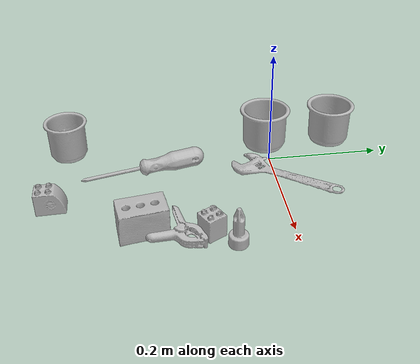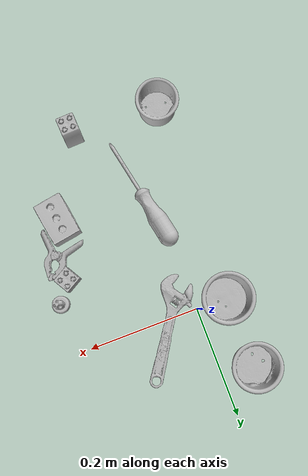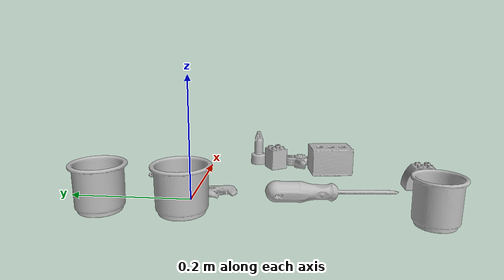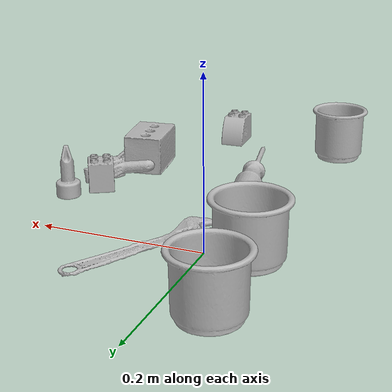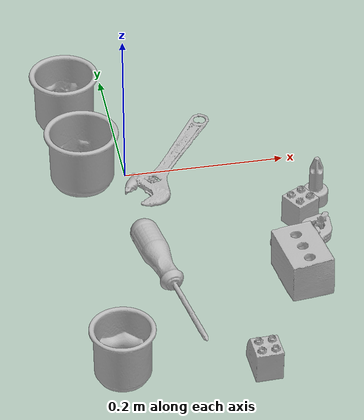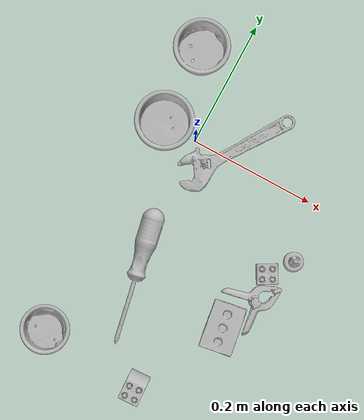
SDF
<sdf version="1.4">
  <world name="default">
    <light name="light1" type="point">
      <pose>0 0 1 0 0 0</pose>
      <diffuse>3 3 3 1</diffuse>
      <specular>3 3 3 1</specular>
    </light>
    <light name="light2" type="point">
      <pose>0 0.5 2 0 0 0</pose>
      <diffuse>1 1 1 1</diffuse>
      <specular>1 1 1 1</specular>
    </light>
    <light name="light3" type="point">
      <pose>0 0.5 2 0 0 0</pose>
      <diffuse>3 3 3 1</diffuse>
      <specular>3 3 3 1</specular>
    </light>
    <scene>
      <ambient>0.7 0.7 0.7</ambient>
    </scene>
    <model name="cup1">
      <link name="link_cup1">
        <collision name="default">
          <geometry>
            <mesh>
              <uri>model://h_cups/collision_meshes/collision.obj</uri>
              <scale>1.0 1.0 1.0</scale>
            </mesh>
          </geometry>
          <surface>
            <friction>
              <ode>
                <mu>0.5</mu>
                <mu2>0.5</mu2>
              </ode>
            </friction>
          <contact>
        <ode>
            <max_vel>0</max_vel>
            <min_depth>0.0001</min_depth>
            <kp>1e8</kp>
        </ode>
    </contact></surface>
        </collision>
        <visual name="default">
          <geometry>
            <mesh>
              <uri>model://h_cups/visual_meshes/visual.dae</uri>
              <scale>1.0 1.0 1.0</scale>
            </mesh>
          </geometry>
        </visual>
        <inertial>
          <mass>0.09017354249954224</mass>
          <pose>-2.702734127524309e-05 0.00023018653155304492 -0.0018405391601845622 -0.024362361674121313 0.06545247408237653 0.12884890922354367</pose>
          <inertia>
            <ixx>0.00011645493</ixx>
            <iyy>0.000115065246</iyy>
            <izz>0.00012212929</izz>
            <ixy>0</ixy>
            <ixz>0</ixz>
            <iyz>0</iyz>
          </inertia>
        </inertial>
      </link>
      <pose>-0.052835214883089066 0.0010603866539895535 0.037758007645606995 -7.298720000541691e-08 -1.9981439537146693e-07 -2.5616257988638096</pose>
    </model>
    <model name="cup2">
      <link name="link_cup2">
        <collision name="default">
          <geometry>
            <mesh>
              <uri>model://g_cups/collision_meshes/collision.obj</uri>
              <scale>1.0 1.0 1.0</scale>
            </mesh>
          </geometry>
          <surface>
            <friction>
              <ode>
                <mu>0.5</mu>
                <mu2>0.5</mu2>
              </ode>
            </friction>
          <contact>
        <ode>
            <max_vel>0</max_vel>
            <min_depth>0.0001</min_depth>
            <kp>1e8</kp>
        </ode>
    </contact></surface>
        </collision>
        <visual name="default">
          <geometry>
            <mesh>
              <uri>model://g_cups/visual_meshes/visual.dae</uri>
              <scale>1.0 1.0 1.0</scale>
            </mesh>
          </geometry>
        </visual>
        <inertial>
          <mass>0.07892031967639923</mass>
          <pose>-0.0007946275873109698 -4.206384619465098e-05 -0.0021329368464648724 -0.21381953376637775 -0.31410844314425407 0.31119468358147234</pose>
          <inertia>
            <ixx>9.211769e-05</ixx>
            <iyy>9.180432e-05</iyy>
            <izz>9.541806e-05</izz>
            <ixy>0</ixy>
            <ixz>0</ixz>
            <iyz>0</iyz>
          </inertia>
        </inertial>
      </link>
      <pose>-0.05628889054059982 0.1261877566576004 0.03720299154520035 -1.5706592567091525e-08 1.6264737900893634e-07 -1.0382475977358239</pose>
    </model>
    <model name="cup3">
      <link name="link_cup3">
        <collision name="default">
          <geometry>
            <mesh>
              <uri>model://e_cups/collision_meshes/collision.obj</uri>
              <scale>1.0 1.0 1.0</scale>
            </mesh>
          </geometry>
          <surface>
            <friction>
              <ode>
                <mu>0.5</mu>
                <mu2>0.5</mu2>
              </ode>
            </friction>
          <contact>
        <ode>
            <max_vel>0</max_vel>
            <min_depth>0.0001</min_depth>
            <kp>1e8</kp>
        </ode>
    </contact></surface>
        </collision>
        <visual name="default">
          <geometry>
            <mesh>
              <uri>model://e_cups/visual_meshes/visual.dae</uri>
              <scale>1.0 1.0 1.0</scale>
            </mesh>
          </geometry>
        </visual>
        <inertial>
          <mass>0.08743876963853836</mass>
          <pose>0.0011355745373293757 0.0028797851409763098 -0.0038829741533845663 0.6952398618358687 0.08767880823198544 -0.5235243888876825</pose>
          <inertia>
            <ixx>7.709911e-05</ixx>
            <iyy>8.05796e-05</iyy>
            <izz>7.3715666e-05</izz>
            <ixy>0</ixy>
            <ixz>0</ixz>
            <iyz>0</iyz>
          </inertia>
        </inertial>
      </link>
      <pose>-0.06185796111822128 -0.3599129617214203 0.035599734634160995 0.0001587307884806865 -0.0002008251523251883 0.22848550027580639</pose>
    </model>
    <model name="toy1">
      <link name="link_toy1">
        <collision name="default">
          <geometry>
            <mesh>
              <uri>model://d_lego_duplo/collision_meshes/collision.obj</uri>
              <scale>1.0 1.0 1.0</scale>
            </mesh>
          </geometry>
          <surface>
            <friction>
              <ode>
                <mu>0.5</mu>
                <mu2>0.5</mu2>
              </ode>
            </friction>
          <contact>
        <ode>
            <max_vel>0</max_vel>
            <min_depth>0.0001</min_depth>
            <kp>1e8</kp>
        </ode>
    </contact></surface>
        </collision>
        <visual name="default">
          <geometry>
            <mesh>
              <uri>model://d_lego_duplo/visual_meshes/visual.dae</uri>
              <scale>1.0 1.0 1.0</scale>
            </mesh>
          </geometry>
        </visual>
        <inertial>
          <mass>0.04292278364300728</mass>
          <pose>0.002830562647432089 0.00016366151976399124 0.0008589805802330375 0.08010895821025366 -0.3835521883517419 0.0010296961053417666</pose>
          <inertia>
            <ixx>8.309218e-06</ixx>
            <iyy>1.1793034e-05</iyy>
            <izz>1.1372727e-05</izz>
            <ixy>0</ixy>
            <ixz>0</ixz>
            <iyz>0</iyz>
          </inertia>
        </inertial>
      </link>
      <pose>0.09734589606523514 -0.37520813941955566 0.02173999883234501 -9.414087439924095e-08 5.502388708300116e-08 -1.5300604010980932</pose>
    </model>
    <model name="toy2">
      <link name="link_toy2">
        <collision name="default">
          <geometry>
            <mesh>
              <uri>model://foam_brick/collision_meshes/collision.obj</uri>
              <scale>1.0 1.0 1.0</scale>
            </mesh>
          </geometry>
          <surface>
            <friction>
              <ode>
                <mu>0.5</mu>
                <mu2>0.5</mu2>
              </ode>
            </friction>
          <contact>
        <ode>
            <max_vel>0</max_vel>
            <min_depth>0.0001</min_depth>
            <kp>1e8</kp>
        </ode>
    </contact></surface>
        </collision>
        <visual name="default">
          <geometry>
            <mesh>
              <uri>model://foam_brick/visual_meshes/visual.dae</uri>
              <scale>1.0 1.0 1.0</scale>
            </mesh>
          </geometry>
        </visual>
        <inertial>
          <mass>0.21218973398208618</mass>
          <pose>-0.0002522472059354186 0.00034584320383146405 -0.0002532101352699101 -0.2940188212014215 0.017274433063530492 -0.0007449861184219897</pose>
          <inertia>
            <ixx>9.268843e-05</ixx>
            <iyy>0.00014798183</iyy>
            <izz>0.00014986254</izz>
            <ixy>0</ixy>
            <ixz>0</ixz>
            <iyz>0</iyz>
          </inertia>
        </inertial>
      </link>
      <pose>0.1724947839975357 -0.23198695480823517 0.02592279016971588 0.013417109921992753 0.004152450803824545 -1.4186015321562853</pose>
    </model>
    <model name="toy3">
      <link name="link_toy3">
        <collision name="default">
          <geometry>
            <mesh>
              <uri>model://f_lego_duplo/collision_meshes/collision.obj</uri>
              <scale>1.0 1.0 1.0</scale>
            </mesh>
          </geometry>
          <surface>
            <friction>
              <ode>
                <mu>0.5</mu>
                <mu2>0.5</mu2>
              </ode>
            </friction>
          <contact>
        <ode>
            <max_vel>0</max_vel>
            <min_depth>0.0001</min_depth>
            <kp>1e8</kp>
        </ode>
    </contact></surface>
        </collision>
        <visual name="default">
          <geometry>
            <mesh>
              <uri>model://f_lego_duplo/visual_meshes/visual.dae</uri>
              <scale>1.0 1.0 1.0</scale>
            </mesh>
          </geometry>
        </visual>
        <inertial>
          <mass>0.024021470919251442</mass>
          <pose>2.3694197807344608e-05 0.00013393140397965908 0.0018837875686585903 0.02983869554967358 -0.014424868856459862 -0.6756716113514201</pose>
          <inertia>
            <ixx>5.075869e-06</ixx>
            <iyy>5.1210886e-06</iyy>
            <izz>4.4060694e-06</izz>
            <ixy>0</ixy>
            <ixz>0</ixz>
            <iyz>0</iyz>
          </inertia>
        </inertial>
      </link>
      <pose>0.19363075494766235 -0.12818863987922668 0.02185729704797268 -0.00037142135861795763 0.0013061296561415207 -1.0558604241143315</pose>
    </model>
    <model name="toy4">
      <link name="link_toy4">
        <collision name="default">
          <geometry>
            <mesh>
              <uri>model://d_toy_airplane/collision_meshes/collision.obj</uri>
              <scale>1.0 1.0 1.0</scale>
            </mesh>
          </geometry>
          <surface>
            <friction>
              <ode>
                <mu>0.5</mu>
                <mu2>0.5</mu2>
              </ode>
            </friction>
          <contact>
        <ode>
            <max_vel>0</max_vel>
            <min_depth>0.0001</min_depth>
            <kp>1e8</kp>
        </ode>
    </contact></surface>
        </collision>
        <visual name="default">
          <geometry>
            <mesh>
              <uri>model://d_toy_airplane/visual_meshes/visual.dae</uri>
              <scale>1.0 1.0 1.0</scale>
            </mesh>
          </geometry>
        </visual>
        <inertial>
          <mass>0.024586454033851624</mass>
          <pose>9.410288475919515e-05 -5.809331560158171e-05 -0.011728096753358841 0.0002662237897190017 0.004679022855495211 0.5193045098973154</pose>
          <inertia>
            <ixx>7.370539e-06</ixx>
            <iyy>7.376099e-06</iyy>
            <izz>2.2252145e-06</izz>
            <ixy>0</ixy>
            <ixz>0</ixz>
            <iyz>0</iyz>
          </inertia>
        </inertial>
      </link>
      <pose>0.22112177312374115 -0.09212549775838852 0.03333950415253639 0.00019895269950674315 -2.5960849756659083e-05 0.585392245403489</pose>
    </model>
    <model name="hardware1">
      <link name="link_hardware1">
        <collision name="default">
          <geometry>
            <mesh>
              <uri>model://phillips_screwdriver/collision_meshes/collision.obj</uri>
              <scale>1.0 1.0 1.0</scale>
            </mesh>
          </geometry>
          <surface>
            <friction>
              <ode>
                <mu>0.5</mu>
                <mu2>0.5</mu2>
              </ode>
            </friction>
          <contact>
        <ode>
            <max_vel>0</max_vel>
            <min_depth>0.0001</min_depth>
            <kp>1e8</kp>
        </ode>
    </contact></surface>
        </collision>
        <visual name="default">
          <geometry>
            <mesh>
              <uri>model://phillips_screwdriver/visual_meshes/visual.dae</uri>
              <scale>1.0 1.0 1.0</scale>
            </mesh>
          </geometry>
        </visual>
        <inertial>
          <mass>0.10962587594985962</mass>
          <pose>-0.04777182266116142 0.0010362300090491772 -0.00045555492397397757 -0.1572763288958183 0.005850995451121224 -0.002156747064170485</pose>
          <inertia>
            <ixx>1.2879916e-05</ixx>
            <iyy>0.00016149164</iyy>
            <izz>0.00016162884</izz>
            <ixy>0</ixy>
            <ixz>0</ixz>
            <iyz>0</iyz>
          </inertia>
        </inertial>
      </link>
      <pose>0.017583057284355164 -0.22307752072811127 0.015409668907523155 0.06561836184110868 0.03756761984126655 -1.3730101642705101</pose>
    </model>
    <model name="hardware2">
      <link name="link_hardware2">
        <collision name="default">
          <geometry>
            <mesh>
              <uri>model://adjustable_wrench/collision_meshes/collision.obj</uri>
              <scale>1.0 1.0 1.0</scale>
            </mesh>
          </geometry>
          <surface>
            <friction>
              <ode>
                <mu>0.5</mu>
                <mu2>0.5</mu2>
              </ode>
            </friction>
          <contact>
        <ode>
            <max_vel>0</max_vel>
            <min_depth>0.0001</min_depth>
            <kp>1e8</kp>
        </ode>
    </contact></surface>
        </collision>
        <visual name="default">
          <geometry>
            <mesh>
              <uri>model://adjustable_wrench/visual_meshes/visual.dae</uri>
              <scale>1.0 1.0 1.0</scale>
            </mesh>
          </geometry>
        </visual>
        <inertial>
          <mass>0.02999398298561573</mass>
          <pose>0.03740980848670006 -0.002896887483075261 -0.001114922808483243 -0.014473357351062987 0.006656019865341655 -0.010954188906160397</pose>
          <inertia>
            <ixx>6.138701e-06</ixx>
            <iyy>7.184631e-05</iyy>
            <izz>7.765895e-05</izz>
            <ixy>0</ixy>
            <ixz>0</ixz>
            <iyz>0</iyz>
          </inertia>
        </inertial>
      </link>
      <pose>0.05820879712700844 0.016639934852719307 0.004628811962902546 3.0982590898245763 -0.01603905509558103 -2.1442428876026245</pose>
    </model>
    <model name="hardware3">
      <link name="link_hardware3">
        <collision name="default">
          <geometry>
            <mesh>
              <uri>model://medium_clamp/collision_meshes/collision.obj</uri>
              <scale>1.0 1.0 1.0</scale>
            </mesh>
          </geometry>
          <surface>
            <friction>
              <ode>
                <mu>0.5</mu>
                <mu2>0.5</mu2>
              </ode>
            </friction>
          <contact>
        <ode>
            <max_vel>0</max_vel>
            <min_depth>0.0001</min_depth>
            <kp>1e8</kp>
        </ode>
    </contact></surface>
        </collision>
        <visual name="default">
          <geometry>
            <mesh>
              <uri>model://medium_clamp/visual_meshes/visual.dae</uri>
              <scale>1.0 1.0 1.0</scale>
            </mesh>
          </geometry>
        </visual>
        <inertial>
          <mass>0.038817502558231354</mass>
          <pose>0.005390993785113096 0.0003953237028326839 -0.0001222158462041989 -0.0012269117309439718 0.002584502422387493 0.03820772500943274</pose>
          <inertia>
            <ixx>1.05752815e-05</ixx>
            <iyy>1.539003e-05</iyy>
            <izz>2.3705257e-05</izz>
            <ixy>0</ixy>
            <ixz>0</ixz>
            <iyz>0</iyz>
          </inertia>
        </inertial>
      </link>
      <pose>0.19705896079540253 -0.17540371417999268 0.013534056022763252 0.07684543707292132 0.08544242702726004 0.9450171913728131</pose>
    </model>
  <physics type="ode">
      <max_contacts>50</max_contacts>
      <ode>
        <solver>
          <type>quick</type>
          <iters>75</iters>
        </solver>
        <constraints>
          <contact_max_correcting_vel>0</contact_max_correcting_vel>
          <contact_surface_layer>0</contact_surface_layer>
        </constraints>
      </ode>
    </physics></world>
</sdf>
